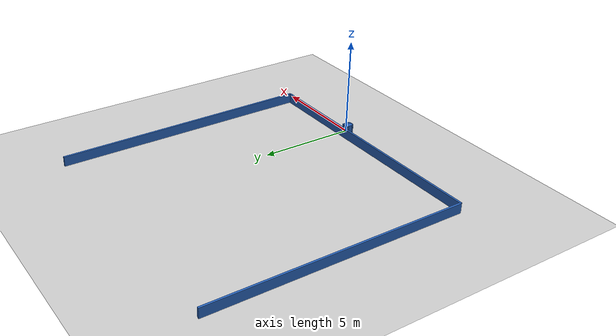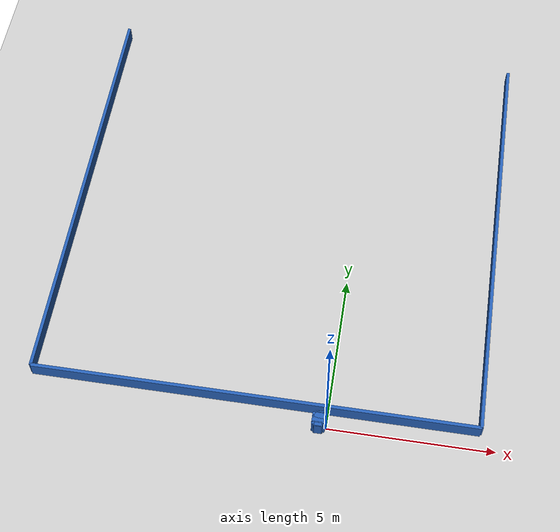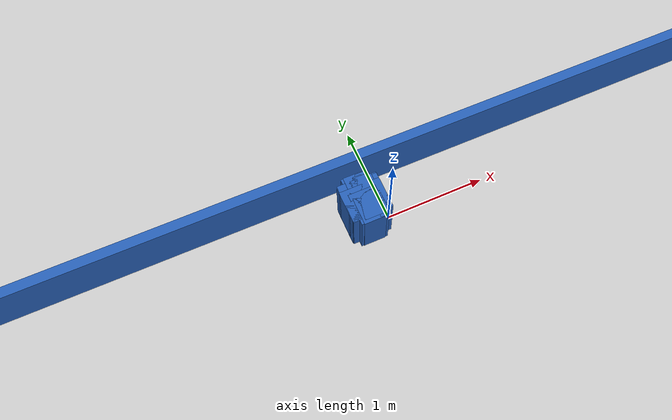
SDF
<?xml version="1.0" ?>
    <sdf version="1.5">
      <world name="default">
        <!-- A global light source -->
        <include>
          <uri>model://sun</uri>
        </include>
        <!-- A ground plane -->
        <include>
          <uri>model://ground_plane</uri>
        </include>

    <model name='libopen_space_final_T2B_126_78'>
      <static>1</static>
      <pose frame=''>-0.225000 0.075000 0.000000 0.000000 0.000000 0.000000</pose>
      <link name='link'>
        <inertial>
          <mass>1</mass>
          <inertia>
            <ixx>0.145833</ixx>
            <ixy>0</ixy>
            <ixz>0</ixz>
            <iyy>0.145833</iyy>
            <iyz>0</iyz>
            <izz>0.125</izz>
          </inertia>
        </inertial>
        <collision name='collision'>
          <geometry>
            <box>
              <size>0.40 0.26 1</size>
            </box>
          </geometry>
          <max_contacts>10</max_contacts>
          <surface>
            <contact>
              <ode/>
            </contact>
            <bounce/>
            <friction>
              <torsional>
                <ode/>
              </torsional>
              <ode/>
            </friction>
          </surface>
        </collision>
        <visual name='visual'>
          <geometry>
            <box>
              <size>0.40 0.26 1</size>
            </box>
          </geometry>
	    <material>
              <ambient>0.152000 0.379000 0.720000 1</ambient>
	      <diffuse>0.152000 0.379000 0.720000 1</diffuse>
          </material>
          <material>
            <script>
              <name>Gazebo/Grey</name>
              <uri>file://media/materials/scripts/gazebo.material</uri>
            </script>
          </material>
        </visual>
        <self_collide>0</self_collide>
        <kinematic>0</kinematic>
        <gravity>1</gravity>
      </link>
      <plugin name='libopen_space_final_T2B_126_78' filename='libopen_space_final_T2B_126_78.so'/>
    </model>

    <model name='libopen_space_final_T2B_94_79'>
      <static>1</static>
      <pose frame=''>-0.225000 0.075000 0.000000 0.000000 0.000000 0.000000</pose>
      <link name='link'>
        <inertial>
          <mass>1</mass>
          <inertia>
            <ixx>0.145833</ixx>
            <ixy>0</ixy>
            <ixz>0</ixz>
            <iyy>0.145833</iyy>
            <iyz>0</iyz>
            <izz>0.125</izz>
          </inertia>
        </inertial>
        <collision name='collision'>
          <geometry>
            <box>
              <size>0.30 0.39 1</size>
            </box>
          </geometry>
          <max_contacts>10</max_contacts>
          <surface>
            <contact>
              <ode/>
            </contact>
            <bounce/>
            <friction>
              <torsional>
                <ode/>
              </torsional>
              <ode/>
            </friction>
          </surface>
        </collision>
        <visual name='visual'>
          <geometry>
            <box>
              <size>0.30 0.39 1</size>
            </box>
          </geometry>
	    <material>
              <ambient>0.152000 0.379000 0.720000 1</ambient>
	      <diffuse>0.152000 0.379000 0.720000 1</diffuse>
          </material>
          <material>
            <script>
              <name>Gazebo/Grey</name>
              <uri>file://media/materials/scripts/gazebo.material</uri>
            </script>
          </material>
        </visual>
        <self_collide>0</self_collide>
        <kinematic>0</kinematic>
        <gravity>1</gravity>
      </link>
      <plugin name='libopen_space_final_T2B_94_79' filename='libopen_space_final_T2B_94_79.so'/>
    </model>

    <model name='libopen_space_final_T2B_111_18'>
      <static>1</static>
      <pose frame=''>-0.225000 0.075000 0.000000 0.000000 0.000000 0.000000</pose>
      <link name='link'>
        <inertial>
          <mass>1</mass>
          <inertia>
            <ixx>0.145833</ixx>
            <ixy>0</ixy>
            <ixz>0</ixz>
            <iyy>0.145833</iyy>
            <iyz>0</iyz>
            <izz>0.125</izz>
          </inertia>
        </inertial>
        <collision name='collision'>
          <geometry>
            <box>
              <size>0.40 0.20 1</size>
            </box>
          </geometry>
          <max_contacts>10</max_contacts>
          <surface>
            <contact>
              <ode/>
            </contact>
            <bounce/>
            <friction>
              <torsional>
                <ode/>
              </torsional>
              <ode/>
            </friction>
          </surface>
        </collision>
        <visual name='visual'>
          <geometry>
            <box>
              <size>0.40 0.20 1</size>
            </box>
          </geometry>
	    <material>
              <ambient>0.152000 0.379000 0.720000 1</ambient>
	      <diffuse>0.152000 0.379000 0.720000 1</diffuse>
          </material>
          <material>
            <script>
              <name>Gazebo/Grey</name>
              <uri>file://media/materials/scripts/gazebo.material</uri>
            </script>
          </material>
        </visual>
        <self_collide>0</self_collide>
        <kinematic>0</kinematic>
        <gravity>1</gravity>
      </link>
      <plugin name='libopen_space_final_T2B_111_18' filename='libopen_space_final_T2B_111_18.so'/>
    </model>

    <model name='libopen_space_final_T2B_56_75'>
      <static>1</static>
      <pose frame=''>-0.225000 0.075000 0.000000 0.000000 0.000000 0.000000</pose>
      <link name='link'>
        <inertial>
          <mass>1</mass>
          <inertia>
            <ixx>0.145833</ixx>
            <ixy>0</ixy>
            <ixz>0</ixz>
            <iyy>0.145833</iyy>
            <iyz>0</iyz>
            <izz>0.125</izz>
          </inertia>
        </inertial>
        <collision name='collision'>
          <geometry>
            <box>
              <size>0.40 0.37 1</size>
            </box>
          </geometry>
          <max_contacts>10</max_contacts>
          <surface>
            <contact>
              <ode/>
            </contact>
            <bounce/>
            <friction>
              <torsional>
                <ode/>
              </torsional>
              <ode/>
            </friction>
          </surface>
        </collision>
        <visual name='visual'>
          <geometry>
            <box>
              <size>0.40 0.37 1</size>
            </box>
          </geometry>
	    <material>
              <ambient>0.152000 0.379000 0.720000 1</ambient>
	      <diffuse>0.152000 0.379000 0.720000 1</diffuse>
          </material>
          <material>
            <script>
              <name>Gazebo/Grey</name>
              <uri>file://media/materials/scripts/gazebo.material</uri>
            </script>
          </material>
        </visual>
        <self_collide>0</self_collide>
        <kinematic>0</kinematic>
        <gravity>1</gravity>
      </link>
      <plugin name='libopen_space_final_T2B_56_75' filename='libopen_space_final_T2B_56_75.so'/>
    </model>

    <model name='libopen_space_final_T2B_80_26'>
      <static>1</static>
      <pose frame=''>-0.225000 0.075000 0.000000 0.000000 0.000000 0.000000</pose>
      <link name='link'>
        <inertial>
          <mass>1</mass>
          <inertia>
            <ixx>0.145833</ixx>
            <ixy>0</ixy>
            <ixz>0</ixz>
            <iyy>0.145833</iyy>
            <iyz>0</iyz>
            <izz>0.125</izz>
          </inertia>
        </inertial>
        <collision name='collision'>
          <geometry>
            <box>
              <size>0.27 0.15 1</size>
            </box>
          </geometry>
          <max_contacts>10</max_contacts>
          <surface>
            <contact>
              <ode/>
            </contact>
            <bounce/>
            <friction>
              <torsional>
                <ode/>
              </torsional>
              <ode/>
            </friction>
          </surface>
        </collision>
        <visual name='visual'>
          <geometry>
            <box>
              <size>0.27 0.15 1</size>
            </box>
          </geometry>
	    <material>
              <ambient>0.152000 0.379000 0.720000 1</ambient>
	      <diffuse>0.152000 0.379000 0.720000 1</diffuse>
          </material>
          <material>
            <script>
              <name>Gazebo/Grey</name>
              <uri>file://media/materials/scripts/gazebo.material</uri>
            </script>
          </material>
        </visual>
        <self_collide>0</self_collide>
        <kinematic>0</kinematic>
        <gravity>1</gravity>
      </link>
      <plugin name='libopen_space_final_T2B_80_26' filename='libopen_space_final_T2B_80_26.so'/>
    </model>

    <model name='libopen_space_final_T2B_125_59'>
      <static>1</static>
      <pose frame=''>-0.225000 0.075000 0.000000 0.000000 0.000000 0.000000</pose>
      <link name='link'>
        <inertial>
          <mass>1</mass>
          <inertia>
            <ixx>0.145833</ixx>
            <ixy>0</ixy>
            <ixz>0</ixz>
            <iyy>0.145833</iyy>
            <iyz>0</iyz>
            <izz>0.125</izz>
          </inertia>
        </inertial>
        <collision name='collision'>
          <geometry>
            <box>
              <size>0.22 0.45 1</size>
            </box>
          </geometry>
          <max_contacts>10</max_contacts>
          <surface>
            <contact>
              <ode/>
            </contact>
            <bounce/>
            <friction>
              <torsional>
                <ode/>
              </torsional>
              <ode/>
            </friction>
          </surface>
        </collision>
        <visual name='visual'>
          <geometry>
            <box>
              <size>0.22 0.45 1</size>
            </box>
          </geometry>
	    <material>
              <ambient>0.152000 0.379000 0.720000 1</ambient>
	      <diffuse>0.152000 0.379000 0.720000 1</diffuse>
          </material>
          <material>
            <script>
              <name>Gazebo/Grey</name>
              <uri>file://media/materials/scripts/gazebo.material</uri>
            </script>
          </material>
        </visual>
        <self_collide>0</self_collide>
        <kinematic>0</kinematic>
        <gravity>1</gravity>
      </link>
      <plugin name='libopen_space_final_T2B_125_59' filename='libopen_space_final_T2B_125_59.so'/>
    </model>

    <model name='libopen_space_final_T2B_57_87'>
      <static>1</static>
      <pose frame=''>-0.225000 0.075000 0.000000 0.000000 0.000000 0.000000</pose>
      <link name='link'>
        <inertial>
          <mass>1</mass>
          <inertia>
            <ixx>0.145833</ixx>
            <ixy>0</ixy>
            <ixz>0</ixz>
            <iyy>0.145833</iyy>
            <iyz>0</iyz>
            <izz>0.125</izz>
          </inertia>
        </inertial>
        <collision name='collision'>
          <geometry>
            <box>
              <size>0.39 0.39 1</size>
            </box>
          </geometry>
          <max_contacts>10</max_contacts>
          <surface>
            <contact>
              <ode/>
            </contact>
            <bounce/>
            <friction>
              <torsional>
                <ode/>
              </torsional>
              <ode/>
            </friction>
          </surface>
        </collision>
        <visual name='visual'>
          <geometry>
            <box>
              <size>0.39 0.39 1</size>
            </box>
          </geometry>
	    <material>
              <ambient>0.152000 0.379000 0.720000 1</ambient>
	      <diffuse>0.152000 0.379000 0.720000 1</diffuse>
          </material>
          <material>
            <script>
              <name>Gazebo/Grey</name>
              <uri>file://media/materials/scripts/gazebo.material</uri>
            </script>
          </material>
        </visual>
        <self_collide>0</self_collide>
        <kinematic>0</kinematic>
        <gravity>1</gravity>
      </link>
      <plugin name='libopen_space_final_T2B_57_87' filename='libopen_space_final_T2B_57_87.so'/>
    </model>

    <model name='libopen_space_final_T2B_112_98'>
      <static>1</static>
      <pose frame=''>-0.225000 0.075000 0.000000 0.000000 0.000000 0.000000</pose>
      <link name='link'>
        <inertial>
          <mass>1</mass>
          <inertia>
            <ixx>0.145833</ixx>
            <ixy>0</ixy>
            <ixz>0</ixz>
            <iyy>0.145833</iyy>
            <iyz>0</iyz>
            <izz>0.125</izz>
          </inertia>
        </inertial>
        <collision name='collision'>
          <geometry>
            <box>
              <size>0.27 0.49 1</size>
            </box>
          </geometry>
          <max_contacts>10</max_contacts>
          <surface>
            <contact>
              <ode/>
            </contact>
            <bounce/>
            <friction>
              <torsional>
                <ode/>
              </torsional>
              <ode/>
            </friction>
          </surface>
        </collision>
        <visual name='visual'>
          <geometry>
            <box>
              <size>0.27 0.49 1</size>
            </box>
          </geometry>
	    <material>
              <ambient>0.152000 0.379000 0.720000 1</ambient>
	      <diffuse>0.152000 0.379000 0.720000 1</diffuse>
          </material>
          <material>
            <script>
              <name>Gazebo/Grey</name>
              <uri>file://media/materials/scripts/gazebo.material</uri>
            </script>
          </material>
        </visual>
        <self_collide>0</self_collide>
        <kinematic>0</kinematic>
        <gravity>1</gravity>
      </link>
      <plugin name='libopen_space_final_T2B_112_98' filename='libopen_space_final_T2B_112_98.so'/>
    </model>

    <model name='libopen_space_final_T2B_91_57'>
      <static>1</static>
      <pose frame=''>-0.225000 0.075000 0.000000 0.000000 0.000000 0.000000</pose>
      <link name='link'>
        <inertial>
          <mass>1</mass>
          <inertia>
            <ixx>0.145833</ixx>
            <ixy>0</ixy>
            <ixz>0</ixz>
            <iyy>0.145833</iyy>
            <iyz>0</iyz>
            <izz>0.125</izz>
          </inertia>
        </inertial>
        <collision name='collision'>
          <geometry>
            <box>
              <size>0.22 0.50 1</size>
            </box>
          </geometry>
          <max_contacts>10</max_contacts>
          <surface>
            <contact>
              <ode/>
            </contact>
            <bounce/>
            <friction>
              <torsional>
                <ode/>
              </torsional>
              <ode/>
            </friction>
          </surface>
        </collision>
        <visual name='visual'>
          <geometry>
            <box>
              <size>0.22 0.50 1</size>
            </box>
          </geometry>
	    <material>
              <ambient>0.152000 0.379000 0.720000 1</ambient>
	      <diffuse>0.152000 0.379000 0.720000 1</diffuse>
          </material>
          <material>
            <script>
              <name>Gazebo/Grey</name>
              <uri>file://media/materials/scripts/gazebo.material</uri>
            </script>
          </material>
        </visual>
        <self_collide>0</self_collide>
        <kinematic>0</kinematic>
        <gravity>1</gravity>
      </link>
      <plugin name='libopen_space_final_T2B_91_57' filename='libopen_space_final_T2B_91_57.so'/>
    </model>

    <model name='libopen_space_final_T2B_90_76'>
      <static>1</static>
      <pose frame=''>-0.225000 0.075000 0.000000 0.000000 0.000000 0.000000</pose>
      <link name='link'>
        <inertial>
          <mass>1</mass>
          <inertia>
            <ixx>0.145833</ixx>
            <ixy>0</ixy>
            <ixz>0</ixz>
            <iyy>0.145833</iyy>
            <iyz>0</iyz>
            <izz>0.125</izz>
          </inertia>
        </inertial>
        <collision name='collision'>
          <geometry>
            <box>
              <size>0.19 0.43 1</size>
            </box>
          </geometry>
          <max_contacts>10</max_contacts>
          <surface>
            <contact>
              <ode/>
            </contact>
            <bounce/>
            <friction>
              <torsional>
                <ode/>
              </torsional>
              <ode/>
            </friction>
          </surface>
        </collision>
        <visual name='visual'>
          <geometry>
            <box>
              <size>0.19 0.43 1</size>
            </box>
          </geometry>
	    <material>
              <ambient>0.152000 0.379000 0.720000 1</ambient>
	      <diffuse>0.152000 0.379000 0.720000 1</diffuse>
          </material>
          <material>
            <script>
              <name>Gazebo/Grey</name>
              <uri>file://media/materials/scripts/gazebo.material</uri>
            </script>
          </material>
        </visual>
        <self_collide>0</self_collide>
        <kinematic>0</kinematic>
        <gravity>1</gravity>
      </link>
      <plugin name='libopen_space_final_T2B_90_76' filename='libopen_space_final_T2B_90_76.so'/>
    </model>

    <model name='libopen_space_final_T2B_103_85'>
      <static>1</static>
      <pose frame=''>-0.225000 0.075000 0.000000 0.000000 0.000000 0.000000</pose>
      <link name='link'>
        <inertial>
          <mass>1</mass>
          <inertia>
            <ixx>0.145833</ixx>
            <ixy>0</ixy>
            <ixz>0</ixz>
            <iyy>0.145833</iyy>
            <iyz>0</iyz>
            <izz>0.125</izz>
          </inertia>
        </inertial>
        <collision name='collision'>
          <geometry>
            <box>
              <size>0.37 0.37 1</size>
            </box>
          </geometry>
          <max_contacts>10</max_contacts>
          <surface>
            <contact>
              <ode/>
            </contact>
            <bounce/>
            <friction>
              <torsional>
                <ode/>
              </torsional>
              <ode/>
            </friction>
          </surface>
        </collision>
        <visual name='visual'>
          <geometry>
            <box>
              <size>0.37 0.37 1</size>
            </box>
          </geometry>
	    <material>
              <ambient>0.152000 0.379000 0.720000 1</ambient>
	      <diffuse>0.152000 0.379000 0.720000 1</diffuse>
          </material>
          <material>
            <script>
              <name>Gazebo/Grey</name>
              <uri>file://media/materials/scripts/gazebo.material</uri>
            </script>
          </material>
        </visual>
        <self_collide>0</self_collide>
        <kinematic>0</kinematic>
        <gravity>1</gravity>
      </link>
      <plugin name='libopen_space_final_T2B_103_85' filename='libopen_space_final_T2B_103_85.so'/>
    </model>

        <model name='bottom_wall'>
          <static>1</static>
          <pose frame=''>-2.25 0.5 0.000000 0.000000 0.000000 1.57079632</pose>
          <link name='link'>
            <inertial>
            <mass>1</mass>
            <inertia>
              <ixx>0.145833</ixx>
              <ixy>0</ixy>
              <ixz>0</ixz>
              <iyy>0.145833</iyy>
              <iyz>0</iyz>
              <izz>0.125</izz>
            </inertia>
            </inertial>
            <collision name='collision'>
            <geometry>
              <box>
              <size>0.1 13.5 1</size>
              </box>
            </geometry>
            <max_contacts>10</max_contacts>
            <surface>
              <contact>
              <ode/>
              </contact>
              <bounce/>
              <friction>
              <torsional>
                <ode/>
              </torsional>
              <ode/>
              </friction>
            </surface>
            </collision>
            <visual name='visual'>
            <geometry>
              <box>
              <size>0.1 13.5 1</size>
              </box>
            </geometry>
            <material>
              <ambient>0.152000 0.379000 0.720000 1</ambient>
            <diffuse>0.152000 0.379000 0.720000 1</diffuse>
            </material>
            <material>
              <script>
              <name>Gazebo/Grey</name>
              <uri>file://media/materials/scripts/gazebo.material</uri>
              </script>
            </material>
            </visual>
            <self_collide>0</self_collide>
            <kinematic>0</kinematic>
            <gravity>1</gravity>
          </link>
        </model>

        <model name='left_wall'>
          <static>1</static>
          <pose frame=''>-9 7.25 0.000000 0.000000 0.000000 0.000000</pose>
          <link name='link'>
            <inertial>
            <mass>1</mass>
            <inertia>
              <ixx>0.145833</ixx>
              <ixy>0</ixy>
              <ixz>0</ixz>
              <iyy>0.145833</iyy>
              <iyz>0</iyz>
              <izz>0.125</izz>
            </inertia>
            </inertial>
            <collision name='collision'>
            <geometry>
              <box>
              <size>0.1 13.5 1</size>
              </box>
            </geometry>
            <max_contacts>10</max_contacts>
            <surface>
              <contact>
              <ode/>
              </contact>
              <bounce/>
              <friction>
              <torsional>
                <ode/>
              </torsional>
              <ode/>
              </friction>
            </surface>
            </collision>
            <visual name='visual'>
            <geometry>
              <box>
              <size>0.1 13.5 1</size>
              </box>
            </geometry>
            <material>
              <ambient>0.152000 0.379000 0.720000 1</ambient>
            <diffuse>0.152000 0.379000 0.720000 1</diffuse>
            </material>
            <material>
              <script>
              <name>Gazebo/Grey</name>
              <uri>file://media/materials/scripts/gazebo.material</uri>
              </script>
            </material>
            </visual>
            <self_collide>0</self_collide>
            <kinematic>0</kinematic>
            <gravity>1</gravity>
          </link>
        </model>

        <model name='right_wall'>
          <static>1</static>
          <pose frame=''>4.5 7.25 0.000000 0.000000 0.000000 0.000000</pose>
          <link name='link'>
            <inertial>
            <mass>1</mass>
            <inertia>
              <ixx>0.145833</ixx>
              <ixy>0</ixy>
              <ixz>0</ixz>
              <iyy>0.145833</iyy>
              <iyz>0</iyz>
              <izz>0.125</izz>
            </inertia>
            </inertial>
            <collision name='collision'>
            <geometry>
              <box>
              <size>0.1 13.5 1</size>
              </box>
            </geometry>
            <max_contacts>10</max_contacts>
            <surface>
              <contact>
              <ode/>
              </contact>
              <bounce/>
              <friction>
              <torsional>
                <ode/>
              </torsional>
              <ode/>
              </friction>
            </surface>
            </collision>
            <visual name='visual'>
            <geometry>
              <box>
              <size>0.1 13.5 1</size>
              </box>
            </geometry>
            <material>
              <ambient>0.152000 0.379000 0.720000 1</ambient>
            <diffuse>0.152000 0.379000 0.720000 1</diffuse>
            </material>
            <material>
              <script>
              <name>Gazebo/Grey</name>
              <uri>file://media/materials/scripts/gazebo.material</uri>
              </script>
            </material>
            </visual>
            <self_collide>0</self_collide>
            <kinematic>0</kinematic>
            <gravity>1</gravity>
          </link>
        </model>

      </world>
    </sdf>"
